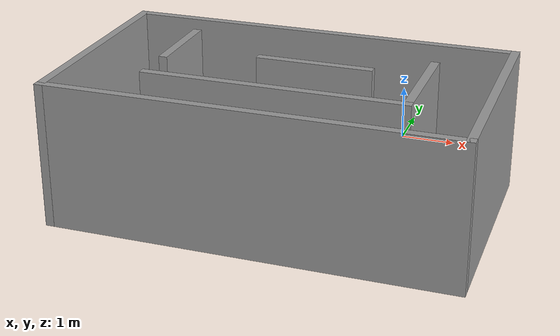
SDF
<?xml version='1.0'?>
<sdf version='1.7'>
  <model name='room'>
    <pose>-1.195 -2.7375 0 0 -0 0</pose>
    <link name='Wall_1'>
      <collision name='Wall_1_Collision'>
        <geometry>
          <box>
            <size>7 0.15 2.5</size>
          </box>
        </geometry>
        <pose>0 0 1.25 0 -0 0</pose>
      </collision>
      <visual name='Wall_1_Visual'>
        <pose>0 0 1.25 0 -0 0</pose>
        <geometry>
          <box>
            <size>7 0.15 2.5</size>
          </box>
        </geometry>
        <material>
          <script>
            <uri>file://media/materials/scripts/gazebo.material</uri>
            <name>Gazebo/Grey</name>
          </script>
          <ambient>1 1 1 1</ambient>
        </material>
        <meta>
          <layer>0</layer>
        </meta>
      </visual>
      <pose>-0 1.1875 0 0 -0 0</pose>
    </link>
    <link name='Wall_12'>
      <collision name='Wall_12_Collision'>
        <geometry>
          <box>
            <size>2 0.15 2.5</size>
          </box>
        </geometry>
        <pose>0 0 1.25 0 -0 0</pose>
      </collision>
      <visual name='Wall_12_Visual'>
        <pose>0 0 1.25 0 -0 0</pose>
        <geometry>
          <box>
            <size>2 0.15 2.5</size>
          </box>
        </geometry>
        <material>
          <script>
            <uri>file://media/materials/scripts/gazebo.material</uri>
            <name>Gazebo/Grey</name>
          </script>
          <ambient>1 1 1 1</ambient>
        </material>
        <meta>
          <layer>0</layer>
        </meta>
      </visual>
      <pose>0.38 -0.3725 0 0 -0 0</pose>
    </link>
    <link name='Wall_16'>
      <collision name='Wall_16_Collision'>
        <geometry>
          <box>
            <size>1.5 0.15 2.5</size>
          </box>
        </geometry>
        <pose>0 0 1.25 0 -0 0</pose>
      </collision>
      <visual name='Wall_16_Visual'>
        <pose>0 0 1.25 0 -0 0</pose>
        <geometry>
          <box>
            <size>1.5 0.15 2.5</size>
          </box>
        </geometry>
        <material>
          <script>
            <uri>file://media/materials/scripts/gazebo.material</uri>
            <name>Gazebo/Grey</name>
          </script>
          <ambient>1 1 1 1</ambient>
        </material>
        <meta>
          <layer>0</layer>
        </meta>
      </visual>
      <pose>-2.105 -0.1675 0 0 -0 1.5708</pose>
    </link>
    <link name='Wall_2'>
      <collision name='Wall_2_Collision'>
        <geometry>
          <box>
            <size>4 0.15 2.5</size>
          </box>
        </geometry>
        <pose>0 0 1.25 0 -0 0</pose>
      </collision>
      <visual name='Wall_2_Visual'>
        <pose>0 0 1.25 0 -0 0</pose>
        <geometry>
          <box>
            <size>4 0.15 2.5</size>
          </box>
        </geometry>
        <material>
          <script>
            <uri>file://media/materials/scripts/gazebo.material</uri>
            <name>Gazebo/Grey</name>
          </script>
          <ambient>1 1 1 1</ambient>
        </material>
        <meta>
          <layer>0</layer>
        </meta>
      </visual>
      <pose>3.425 -0.7375 0 0 -0 -1.5708</pose>
    </link>
    <link name='Wall_3'>
      <collision name='Wall_3_Collision'>
        <geometry>
          <box>
            <size>7 0.15 2.5</size>
          </box>
        </geometry>
        <pose>0 0 1.25 0 -0 0</pose>
      </collision>
      <visual name='Wall_3_Visual'>
        <pose>0 0 1.25 0 -0 0</pose>
        <geometry>
          <box>
            <size>7 0.15 2.5</size>
          </box>
        </geometry>
        <material>
          <script>
            <uri>file://media/materials/scripts/gazebo.material</uri>
            <name>Gazebo/Grey</name>
          </script>
          <ambient>1 1 1 1</ambient>
        </material>
        <meta>
          <layer>0</layer>
        </meta>
      </visual>
      <pose>-0 -2.6625 0 0 -0 3.14159</pose>
    </link>
    <link name='Wall_4'>
      <collision name='Wall_4_Collision'>
        <geometry>
          <box>
            <size>4 0.15 2.5</size>
          </box>
        </geometry>
        <pose>0 0 1.25 0 -0 0</pose>
      </collision>
      <visual name='Wall_4_Visual'>
        <pose>0 0 1.25 0 -0 0</pose>
        <geometry>
          <box>
            <size>4 0.15 2.5</size>
          </box>
        </geometry>
        <material>
          <script>
            <uri>file://media/materials/scripts/gazebo.material</uri>
            <name>Gazebo/Grey</name>
          </script>
          <ambient>1 1 1 1</ambient>
        </material>
        <meta>
          <layer>0</layer>
        </meta>
      </visual>
      <pose>-3.425 -0.7375 0 0 -0 1.5708</pose>
    </link>
    <link name='Wall_6'>
      <collision name='Wall_6_Collision'>
        <geometry>
          <box>
            <size>4.5 0.15 2.5</size>
          </box>
        </geometry>
        <pose>0 0 1.25 0 -0 0</pose>
      </collision>
      <visual name='Wall_6_Visual'>
        <pose>0 0 1.25 0 -0 0</pose>
        <geometry>
          <box>
            <size>4.5 0.15 2.5</size>
          </box>
        </geometry>
        <material>
          <script>
            <uri>file://media/materials/scripts/gazebo.material</uri>
            <name>Gazebo/Grey</name>
          </script>
          <ambient>1 1 1 1</ambient>
        </material>
        <meta>
          <layer>0</layer>
        </meta>
      </visual>
      <pose>0.08 -1.6225 0 0 -0 0</pose>
    </link>
    <link name='Wall_7'>
      <collision name='Wall_7_Collision'>
        <geometry>
          <box>
            <size>2 0.15 2.5</size>
          </box>
        </geometry>
        <pose>0 0 1.25 0 -0 0</pose>
      </collision>
      <visual name='Wall_7_Visual'>
        <pose>0 0 1.25 0 -0 0</pose>
        <geometry>
          <box>
            <size>2 0.15 2.5</size>
          </box>
        </geometry>
        <material>
          <script>
            <uri>file://media/materials/scripts/gazebo.material</uri>
            <name>Gazebo/Grey</name>
          </script>
          <ambient>1 1 1 1</ambient>
        </material>
        <meta>
          <layer>0</layer>
        </meta>
      </visual>
      <pose>2.255 -0.6975 0 0 -0 1.5708</pose>
    </link>
    <static>1</static>
  </model>
</sdf>
